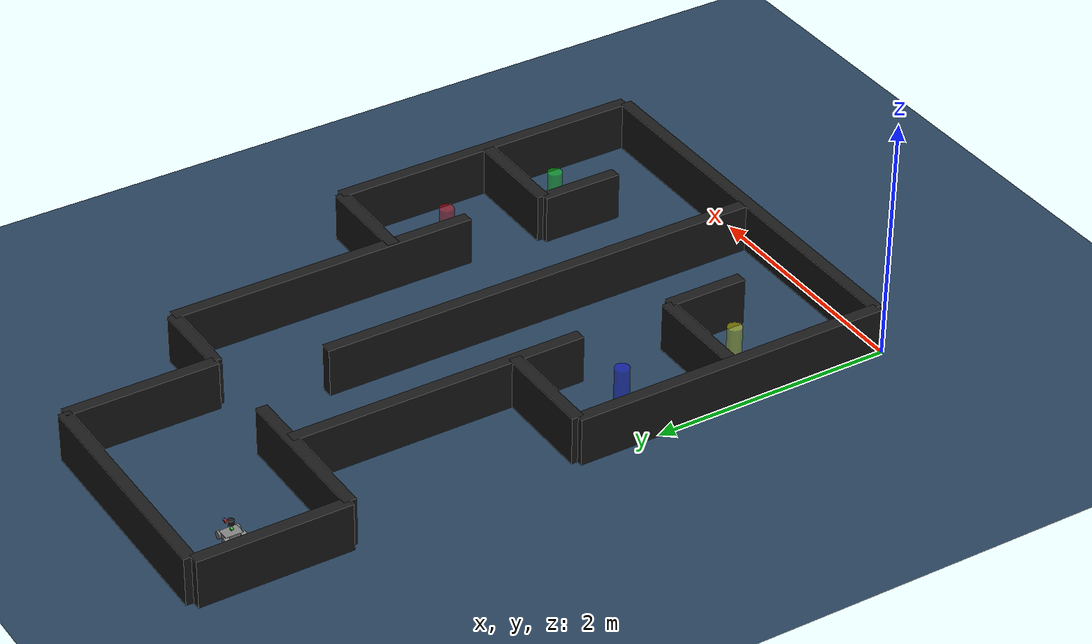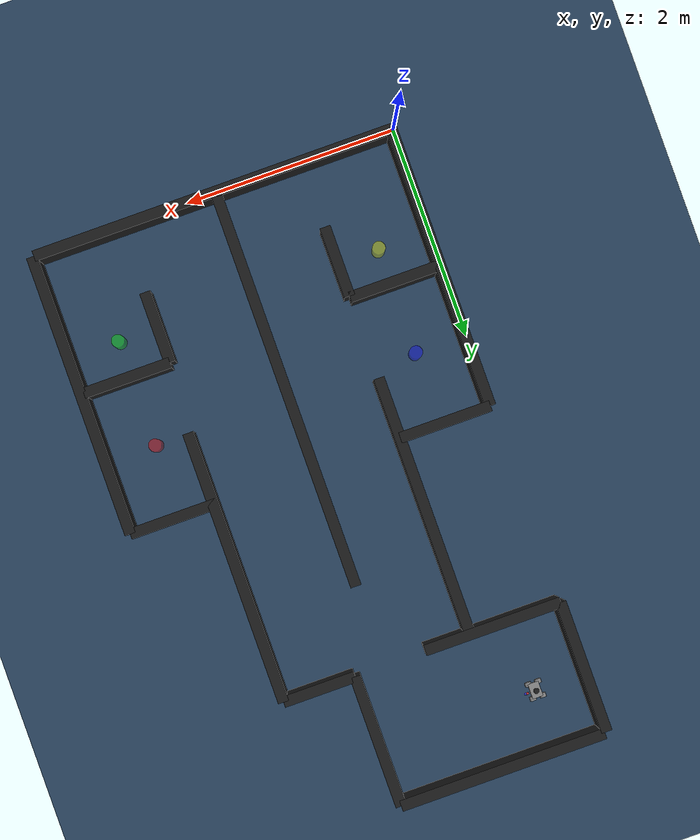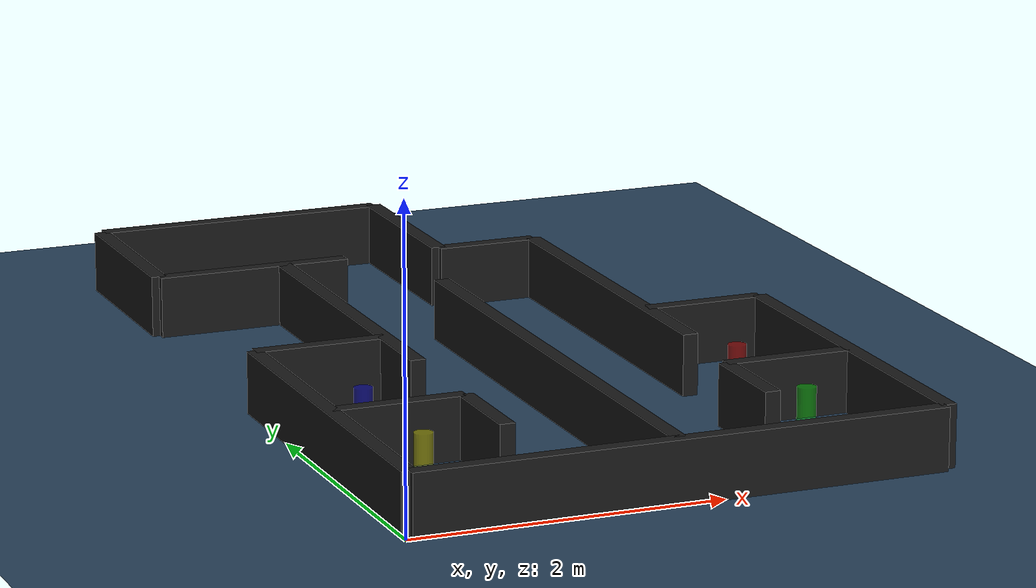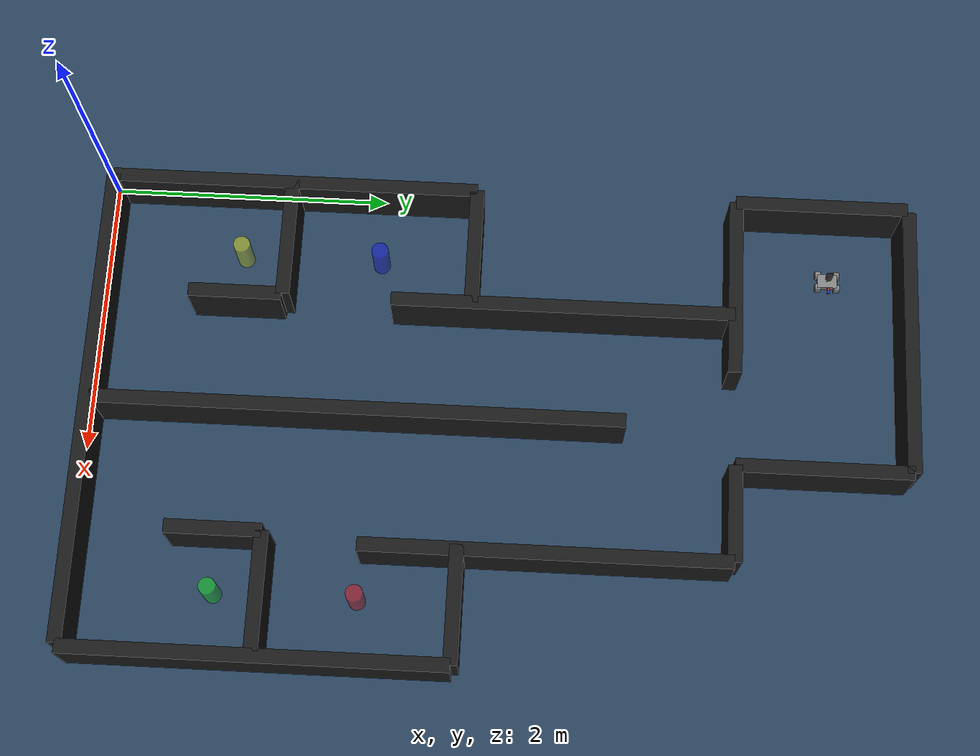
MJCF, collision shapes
<mujoco model="car_in_maze">
  <compiler angle="radian" meshdir="robot_description/meshes/"/>
  <option integrator="RK4" timestep="0.001"/>

  <!-- assets  -->
  <asset>
    <texture type="2d" name="groundplane" builtin="checker"
             rgb1="0.2 0.3 0.4" rgb2="0.1 0.2 0.3" width="512" height="512"/>
    <material name="groundplane" texture="groundplane"
              texrepeat="1 1" texuniform="true"/>
    <mesh name="base_link" file="base_link.STL"/>
    <mesh name="zq_Link"   file="zq_Link.STL"/>
    <mesh name="yq_Link"   file="yq_Link.STL"/>
    <mesh name="yh_Link"   file="yh_Link.STL"/>
    <mesh name="zh_Link"   file="zh_Link.STL"/>
    <mesh name="radar_Link" file="radar_Link.STL"/>
  </asset>

  <!--  world  -->
  <worldbody>
    <light name="top"   pos="0   0 3"    diffuse="0.7 0.7 0.7" specular="0.3 0.3 0.3"/>
    <light name="front" pos="0  -5 3"    dir="0 1 -0.3"    diffuse="0.8 0.8 0.8" specular="0.2 0.2 0.2"/>
    <light name="side"  pos="-5  0 3"    dir="1 0 -0.3"    diffuse="0.8 0.8 0.8" specular="0.2 0.2 0.2"/>
    <!-- navigation targets -->
    <site name="pylon_A" pos="3 2 0" size="0.06 0.30" rgba="1 0 0 0.4" type="cylinder"/>
    <site name="pylon_B" pos= "3  1.0 0" size="0.06 0.30" rgba="0 1 0 0.4" type="cylinder"/>
    <site name="pylon_C" pos=" .5 2 0" size="0.06 0.30" rgba="0 0 1 0.4" type="cylinder"/>
    <site name="pylon_D" pos=" .5 1.0 0" size="0.06 0.30" rgba="1 1 0 0.4" type="cylinder"/>

    <camera name="top_down" mode="track" target="base_link"
        pos="0.5 5.25 .1" xyaxes="1 0 0 0 1 0"/>

    <geom name="floor" size="5 7 0.1" type="plane" material="groundplane"/>
<!-- Maze walls autogenerated from your coordinates -->
    <geom name="wall_seg_0" type="box" pos="0.040 5.165 0.2" size="0.050 0.615 0.2" rgba="0.1 0.1 0.1 1"/>
    <geom name="wall_seg_1" type="box" pos="0.685 4.550 0.2" size="0.645 0.050 0.2" rgba="0.1 0.1 0.1 1"/>
    <geom name="wall_seg_2" type="box" pos="0.900 3.330 0.2" size="0.050 1.220 0.2" rgba="0.1 0.1 0.1 1"/>
    <geom name="wall_seg_3" type="box" pos="0.470 2.680 0.2" size="0.430 0.050 0.2" rgba="0.1 0.1 0.1 1"/>
    <geom name="wall_seg_4" type="box" pos="0.040 1.360 0.2" size="0.050 1.320 0.2" rgba="0.1 0.1 0.1 1"/>
    <geom name="wall_seg_5" type="box" pos="1.745 0.040 0.2" size="1.705 0.050 0.2" rgba="0.1 0.1 0.1 1"/>
    <geom name="wall_seg_6" type="box" pos="3.470 1.360 0.2" size="0.050 1.320 0.2" rgba="0.1 0.1 0.1 1"/>
    <geom name="wall_seg_7" type="box" pos="3.060 2.680 0.2" size="0.410 0.050 0.2" rgba="0.1 0.1 0.1 1"/>
    <geom name="wall_seg_8" type="box" pos="2.680 3.280 0.2" size="0.050 1.280 0.2" rgba="0.1 0.1 0.1 1"/>
    <geom name="wall_seg_9" type="box" pos="2.340 4.560 0.2" size="0.340 0.050 0.2" rgba="0.1 0.1 0.1 1"/>
    <geom name="wall_seg_10" type="box" pos="2.000 5.175 0.2" size="0.050 0.615 0.2" rgba="0.1 0.1 0.1 1"/>
    <geom name="wall_seg_11" type="box" pos="1.030 5.790 0.2" size="0.970 0.050 0.2" rgba="0.1 0.1 0.1 1"/>
    <geom name="wall_seg_12" type="box" pos="0.460 1.340 0.2" size="0.440 0.050 0.2" rgba="0.1 0.1 0.1 1"/>
    <geom name="wall_seg_13" type="box" pos="0.900 1.000 0.2" size="0.050 0.330 0.2" rgba="0.1 0.1 0.1 1"/>
    <geom name="wall_seg_14" type="box" pos="3.030 1.350 0.2" size="0.410 0.050 0.2" rgba="0.1 0.1 0.1 1"/>
    <geom name="wall_seg_15" type="box" pos="2.620 1.015 0.2" size="0.050 0.335 0.2" rgba="0.1 0.1 0.1 1"/>
    <geom name="wall_seg_16" type="box" pos="1.720 1.930 0.2" size="0.050 1.870 0.2" rgba="0.1 0.1 0.1 1"/>

  <!-- lobby entrance (START) is open at bottom-center -->

  <!-- ─────── Robot body: spawn in the lobby ─────── -->
  <body name="base_link" pos="0.5 5.25 .1">
    <joint type="free"/>
    <geom type="mesh" mesh="base_link" rgba="1 1 1 1" contype="0" conaffinity="0"/>
      <geom type="box" size="0.05 0.07 0.02" pos="0 0 -0.01" group="3"/>
      <inertial pos="0 0 0" mass="1.5" diaginertia="0.0027 0.0015 0.0037"/>

      <!--  LiDAR / radar block (raised)  -->
      <body name="radar_link" pos="0 0 0.09">
        <geom type="mesh" mesh="radar_Link" rgba="0.1 0.1 0.1 1" contype="0" conaffinity="0"/>
        <geom type="cylinder" size="0.025 0.02" rgba="0.1 0.1 0.1 1" group="3"/>
        <inertial pos="0 0 0" mass="0.038" diaginertia="8.81e-6 1.44e-05 2.24e-05"/>

        <!-- horizontal beams: 90° about +Y then yawed -->
        <site name="lidar_0"   pos="0 0 0" quat="0.7071  0      0.7071 0" size="0.005" type="sphere"/>
        <site name="lidar_45"  pos="0 0 0" quat="0.7071 -0.5    0.5    0" size="0.005" type="sphere"/>
        <site name="lidar_90"  pos="0 0 0" quat="0.7071 -0.7071 0      0" size="0.005" type="sphere"/>
        <site name="lidar_135" pos="0 0 0" quat="0.7071 -0.5   -0.5    0" size="0.005" type="sphere"/>
        <site name="lidar_180" pos="0 0 0" quat="0.7071  0     -0.7071 0" size="0.005" type="sphere"/>
        <site name="lidar_225" pos="0 0 0" quat="0.7071  0.5   -0.5    0" size="0.005" type="sphere"/>
        <site name="lidar_270" pos="0 0 0" quat="0.7071  0.7071 0      0" size="0.005" type="sphere"/>
        <site name="lidar_315" pos="0 0 0" quat="0.7071  0.5    0.5    0" size="0.005" type="sphere"/>
      </body>

      <!-- IMU block (unchanged) -->
      <body name="imu_link" pos="-0.002 -0.003 0.031">
        <geom size="0.015 0.01 0.005" type="box" rgba="0.2 0.8 0.2 1"/>
        <inertial pos="0 0 0" mass="0.013" diaginertia="2.09e-6 4.73e-6 6.79e-06"/>
      </body>

      <body name="zq_Link" pos="0.0455 0.0675 -0.02125">
        <inertial pos="0 0 0" mass="0.07" diaginertia="2.66e-6 4.68e-6 2.66e-06"/>
        <joint name="zq_Joint" type="hinge" axis="0 -1 0" damping="0.0075"/>
        <geom type="mesh" mesh="zq_Link" rgba="0.6 0.6 0.6 1" contype="0" conaffinity="0"/>
        <geom name="zq_collision" type="cylinder" size="0.03 0.02" quat="0.707 0.707 0 0" solimp="0.9 0.95 0.001" solref="0.02 1"/>
      </body>
      <body name="yq_Link" pos="0.0455 -0.0675 -0.02125">
        <inertial pos="0 0 0" mass="0.07" diaginertia="2.66e-6 4.68e-6 2.66e-06"/>
        <joint name="yq_Joint" type="hinge" axis="0 1 0" damping="0.0075"/>
        <geom type="mesh" mesh="yq_Link" rgba="0.6 0.6 0.6 1" contype="0" conaffinity="0"/>
        <geom name="yq_collision" type="cylinder" size="0.03 0.02" quat="0.707 0.707 0 0" solimp="0.9 0.95 0.001" solref="0.02 1"/>
      </body>
      <body name="yh_Link" pos="-0.0495 -0.0675 -0.02125">
        <inertial pos="0 0 0" mass="0.07" diaginertia="2.66e-6 4.68e-6 2.66e-06"/>
        <joint name="yh_Joint" type="hinge" axis="0 1 0" damping="0.0075"/>
        <geom type="mesh" mesh="yh_Link" rgba="0.6 0.6 0.6 1" contype="0" conaffinity="0"/>
        <geom name="yh_collision" type="cylinder" size="0.03 0.02" quat="0.707 0.707 0 0" solimp="0.9 0.95 0.001" solref="0.02 1"/>
      </body>
      <body name="zh_Link" pos="-0.0495 0.0675 -0.02125">
        <inertial pos="0 0 0" mass="0.07" diaginertia="2.66e-6 4.68e-6 2.66e-06"/>
        <joint name="zh_Joint" type="hinge" axis="0 -1 0" damping="0.0075"/>
        <geom type="mesh" mesh="zh_Link" rgba="0.6 0.6 0.6 1" contype="0" conaffinity="0"/>
        <geom name="zh_collision" type="cylinder" size="0.03 0.02" quat="0.707 0.707 0 0" solimp="0.9 0.95 0.001" solref="0.02 1"/>
      </body>

      <body name="camera_yaw_link" pos="0.08 0 0.045">
        <inertial pos="0 0 0" mass="0.05" diaginertia="1e-4 1e-4 1e-4"/>
        <joint name="camera_yaw_joint" type="hinge" axis="0 0 1"
               range="-0.785 0.785" damping="0.1"/>
        <geom type="box" size="0.01 0.01 0.01" rgba="0.8 0.2 0.2 1"/>
        <body name="camera_pitch_link">
          <inertial pos="0 0 0" mass="0.05" diaginertia="1e-4 1e-4 1e-4"/>
          <joint name="camera_pitch_joint" type="hinge" axis="0 1 0"
                 range="-0.785 0.785" damping="0.1"/>
          <geom type="cylinder" size="0.01 0.015" pos="0.015 0 0"
                quat="0.707 0 0.707 0" rgba="0.2 0.2 0.8 1"/>
          <camera name="front_camera" mode="fixed" fovy="60"/>
        </body>
      </body>
    </body>
  </worldbody>

  <actuator>
    <motor name="front_left_motor"  joint="zq_Joint"  ctrllimited="true" ctrlrange="-1.0 1.0" forcerange="-0.1 0.1"/>
    <motor name="front_right_motor" joint="yq_Joint"  ctrllimited="true" ctrlrange="-1.0 1.0" forcerange="-0.1 0.1"/>
    <motor name="back_left_motor"   joint="zh_Joint"  ctrllimited="true" ctrlrange="-1.0 1.0" forcerange="-0.1 0.1"/>
    <motor name="back_right_motor"  joint="yh_Joint"  ctrllimited="true" ctrlrange="-1.0 1.0" forcerange="-0.1 0.1"/>
    <position name="camera_yaw_servo" joint="camera_yaw_joint" kp="0.2" kv="0.005"/>
    <position name="camera_pitch_servo" joint="camera_pitch_joint" kp="0.2" kv="0.005"/>
  </actuator>
  <sensor>
    <rangefinder name="lidar_0" site="lidar_0"/><rangefinder name="lidar_45" site="lidar_45"/><rangefinder name="lidar_90" site="lidar_90"/>
    <rangefinder name="lidar_135" site="lidar_135"/><rangefinder name="lidar_180" site="lidar_180"/><rangefinder name="lidar_225" site="lidar_225"/>
    <rangefinder name="lidar_270" site="lidar_270"/><rangefinder name="lidar_315" site="lidar_315"/>
    <framepos name="position" objtype="body" objname="imu_link"/>
    <framequat name="orientation" objtype="body" objname="imu_link"/>
    <framelinvel name="linear_velocity" objtype="body" objname="imu_link"/>
    <frameangvel name="angular_velocity" objtype="body" objname="imu_link"/>
  </sensor>
</mujoco>
